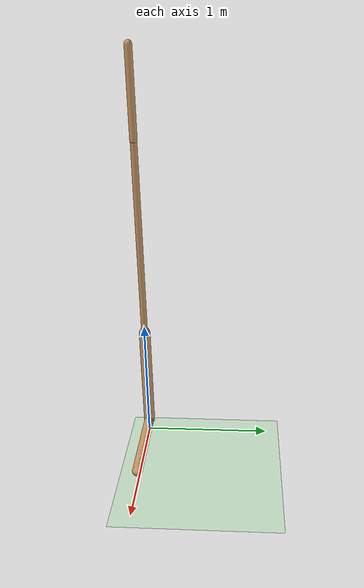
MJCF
<mujoco model="walker2d">
  <compiler angle="degree" inertiafromgeom="true" />
  <default>
    <joint armature="0.01" damping=".1" limited="true" />
    <geom conaffinity="0" condim="3" contype="1" density="1000" friction=".7 .1 .1" rgba="0.8 0.6 .4 1" />
  </default>
  <option integrator="RK4" timestep="0.002" />
  <worldbody>
    <light cutoff="100" diffuse="1 1 1" dir="-0 0 -1.3" directional="true" exponent="1" pos="0 0 1.3" specular=".1 .1 .1" />
    <geom conaffinity="1" condim="3" name="floor" pos="0 0 0" rgba="0.8 0.9 0.8 1" size="40 40 40" type="plane" material="MatPlane" />
    <body name="torso" pos="0 0 2.7766261756420136">
      <camera name="track" mode="trackcom" pos="0 -5 -1.25" xyaxes="1 0 0 0 0 1" />
      <joint armature="0" axis="1 0 0" damping="0" limited="false" name="rootx" pos="0 0 -1.25" stiffness="0" type="slide" />
      <joint armature="0" axis="0 0 1" damping="0" limited="false" name="rootz" pos="0 0 -1.25" ref="1.25" stiffness="0" type="slide" />
      <joint armature="0" axis="0 1 0" damping="0" limited="false" name="rooty" pos="0 0 0" stiffness="0" type="hinge" />
      <geom friction="0.9" name="torso_geom" size="0.0272844098508358 0.3097875416278839" type="capsule" />
      <body name="thigh" pos="0 0 -0.3097875416278839">
        <joint axis="0 -1 0" name="thigh_joint" pos="0 0 0" range="-150 0" type="hinge" />
        <site name="torso_thigh_site" pos="0 0 0" size="0.01" type="sphere" rgba="1 0 0 0.5" />
        <geom friction="0.9" pos="0 0 -0.760408878326416" name="thigh_geom" size="0.02513030730187893 0.760408878326416" type="capsule" />
        <body name="leg" pos="0 0 -1.9438281953334808">
          <joint axis="0 -1 0" name="leg_joint" pos="0 0 0.4230104386806488" range="-150 0" type="hinge" />
          <site name="thigh_leg_site" pos="0 0 0.25" size="0.01" type="sphere" rgba="1 0 0 0.5" />
          <geom friction="0.9" name="leg_geom" size="0.04522214084863663 0.4230104386806488" type="capsule" />
          <body name="foot" pos="0.6477784514427185 0 -0.5230104386806488">
            <joint axis="0 -1 0" name="foot_joint" pos="-0.6477784514427185 0 0.1" range="-45 45" type="hinge" />
            <site name="leg_foot_site" pos="-0.2 0 0.1" size="0.01" type="sphere" rgba="1 0 0 0.5" />
            <geom friction="0.9" pos="-0.32388922572135925 0 0.1" quat="0.70710678118654757 0 -0.70710678118654746 0" name="foot_geom" size="0.039425645023584366 0.32388922572135925" type="capsule" />
          </body>
        </body>
      </body>

      <body name="thigh_left" pos="0 0 -0.3097875416278839">
        <joint axis="0 -1 0" name="thigh_left_joint" pos="0 0 0" range="-150 0" type="hinge" />
        <site name="torso_thigh_left_site" pos="0 0 0" size="0.01" type="sphere" rgba="1 0 0 0.5" />
        <geom friction="0.9" name="thigh_left_geom" rgba=".7 .3 .6 1" size="0.02513030730187893 0.760408878326416" pos="0 0 -0.760408878326416" type="capsule" />
        <body name="leg_left" pos="0 0 -1.9438281953334808">
          <joint axis="0 -1 0" name="leg_left_joint" pos="0 0 0.4230104386806488" range="-150 0" type="hinge" />
          <site name="thigh_leg_left_site" pos="0 0 0.25" size="0.01" type="sphere" rgba="1 0 0 0.5" />
          <geom friction="0.9" name="leg_left_geom" rgba=".7 .3 .6 1" size="0.04522214084863663 0.4230104386806488" type="capsule" />
          <body name="foot_left" pos="0.6477784514427185 0 -0.5230104386806488">
            <joint axis="0 -1 0" name="foot_left_joint" pos="-0.6477784514427185 0 0.1" range="-45 45" type="hinge" />
            <site name="leg_foot_left_site" pos="-0.2 0 0.1" size="0.01" type="sphere" rgba="1 0 0 0.5" />
            <geom friction="1.9" name="foot_left_geom" rgba=".7 .3 .6 1" size="0.039425645023584366 0.32388922572135925" pos="-0.32388922572135925 0 0.1" type="capsule" quat="0.70710678118654757 0 -0.70710678118654746 0" />
          </body>
        </body>
      </body>
    </body>
  </worldbody>
  <actuator>

    <motor ctrllimited="true" ctrlrange="-1.0 1.0" gear="85.37294260521908" joint="thigh_joint" />
    <motor ctrllimited="true" ctrlrange="-1.0 1.0" gear="216.26853081041074" joint="leg_joint" />
    <motor ctrllimited="true" ctrlrange="-1.0 1.0" gear="139.8465043951471" joint="foot_joint" />
    <motor ctrllimited="true" ctrlrange="-1.0 1.0" gear="85.37294260521908" joint="thigh_left_joint" />
    <motor ctrllimited="true" ctrlrange="-1.0 1.0" gear="216.26853081041074" joint="leg_left_joint" />
    <motor ctrllimited="true" ctrlrange="-1.0 1.0" gear="139.8465043951471" joint="foot_left_joint" />

  </actuator>
    <asset>
        <texture type="skybox" builtin="gradient" rgb1=".4 .5 .6" rgb2="0 0 0" width="100" height="100" />
        <texture builtin="flat" height="1278" mark="cross" markrgb="1 1 1" name="texgeom" random="0.01" rgb1="0.8 0.6 0.4" rgb2="0.8 0.6 0.4" type="cube" width="127" />
        <texture builtin="checker" height="100" name="texplane" rgb1="0 0 0" rgb2="0.8 0.8 0.8" type="2d" width="100" />
        <material name="MatPlane" reflectance="0.5" shininess="1" specular="1" texrepeat="60 60" texture="texplane" />
        <material name="geom" texture="texgeom" texuniform="true" />
    </asset>

  <sensor>
    <force site="torso_thigh_site" name="torso_thigh_sensor" />
    <force site="thigh_leg_site" name="thigh_leg_sensor" />
    <force site="leg_foot_site" name="leg_foot_sensor" />
    <force site="torso_thigh_left_site" name="torso_thigh_left_sensor" />
    <force site="thigh_leg_left_site" name="thigh_leg_left_sensor" />
    <force site="leg_foot_left_site" name="leg_foot_left_sensor" />
  </sensor>
</mujoco>
